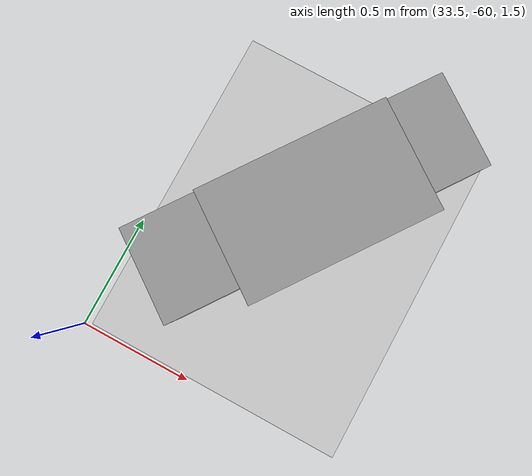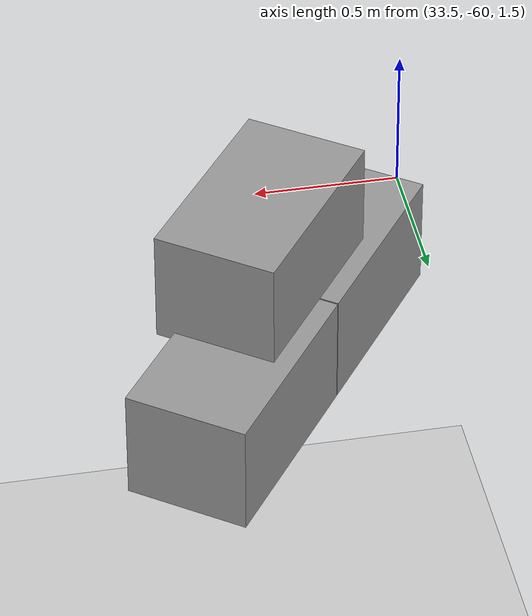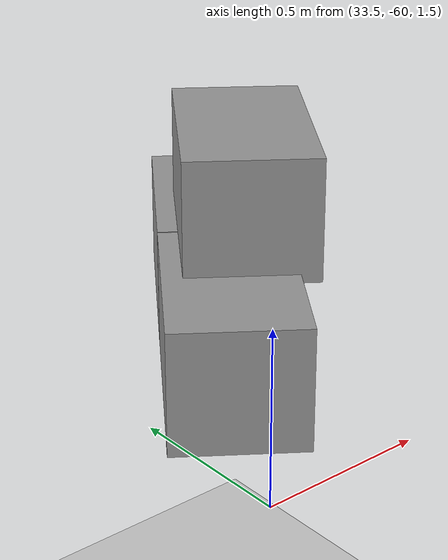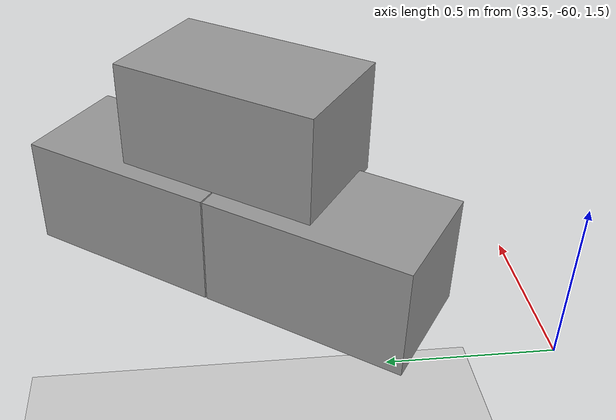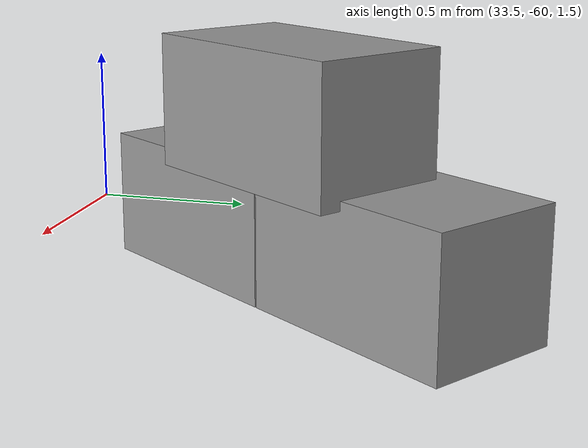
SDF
<sdf version="1.7">
 <world name="default">
  <model name="ground_plane">
   <static>1</static>
   <link name="link">
    <collision name="collision">
     <geometry><plane><normal>0 0 1</normal><size>100 100</size></plane></geometry>
     <surface>
      <contact><collide_bitmask>65535</collide_bitmask></contact>
      <friction><ode><mu>100</mu><mu2>50</mu2></ode></friction>
     </surface>
    </collision>
    <visual name="visual">
     <cast_shadows>0</cast_shadows>
     <geometry><plane><normal>0 0 1</normal><size>100 100</size></plane></geometry>
     <material>
      <script><uri>file://media/materials/scripts/gazebo.material</uri><name>Gazebo/Grey</name></script>
     </material>
    </visual>
   </link>
  </model>
  <model name="Add_Box_clone_clone_3_clone_18">
   <link name="link">
    <inertial>
     <mass>1</mass>
     <inertia>
      <ixx>0.166667</ixx>
      <ixy>0</ixy>
      <ixz>0</ixz>
      <iyy>0.166667</iyy>
      <iyz>0</iyz>
      <izz>0.166667</izz>
     </inertia>
    </inertial>
    <kinematic>1</kinematic>
    <gravity>0</gravity>
    <visual name="visual">
     <geometry><box><size>0.686 0.406 0.381</size></box></geometry>
     <material>
      <script><name>Gazebo/Grey</name><uri>file://media/materials/scripts/gazebo.material</uri></script>
      <shader type="pixel"><normal_map>__default__</normal_map></shader>
      <ambient>0.3 0.3 0.3 1</ambient>
      <diffuse>0.7 0.7 0.7 1</diffuse>
      <specular>0.01 0.01 0.01 1</specular>
      <emissive>0 0 0 1</emissive>
     </material>
    </visual>
    <collision name="collision">
     <geometry><box><size>1 1 1</size></box></geometry>
     <surface>
      <friction>
       <ode><mu>1</mu><mu2>1</mu2><fdir1>0 0 0</fdir1><slip1>0</slip1><slip2>0</slip2></ode>
       <torsional>
        <coefficient>1</coefficient>
        <patch_radius>0</patch_radius>
        <surface_radius>0</surface_radius>
        <use_patch_radius>1</use_patch_radius>
        <ode><slip>0</slip></ode>
       </torsional>
      </friction>
      <bounce><restitution_coefficient>0</restitution_coefficient><threshold>1e+06</threshold></bounce>
      <contact>
       <collide_without_contact>0</collide_without_contact>
       <collide_without_contact_bitmask>1</collide_without_contact_bitmask>
       <collide_bitmask>1</collide_bitmask>
       <ode>
        <soft_cfm>0</soft_cfm>
        <soft_erp>0.2</soft_erp>
        <kp>1e+13</kp>
        <kd>1</kd>
        <max_vel>0.01</max_vel>
        <min_depth>0</min_depth>
       </ode>
       <bullet>
        <split_impulse>1</split_impulse>
        <split_impulse_penetration_threshold>-0.01</split_impulse_penetration_threshold>
        <soft_cfm>0</soft_cfm>
        <soft_erp>0.2</soft_erp>
        <kp>1e+13</kp>
        <kd>1</kd>
       </bullet>
      </contact>
     </surface>
    </collision>
   </link>
   <link name="link_clone">
    <inertial>
     <mass>1</mass>
     <inertia>
      <ixx>0.166667</ixx>
      <ixy>0</ixy>
      <ixz>0</ixz>
      <iyy>0.166667</iyy>
      <iyz>0</iyz>
      <izz>0.166667</izz>
     </inertia>
    </inertial>
    <pose>-0.343354 -0.063316 0.354303 1e-05 -0 0</pose>
    <gravity>0</gravity>
    <visual name="visual">
     <geometry><box><size>0.686 0.406 0.381</size></box></geometry>
     <material>
      <script><name>Gazebo/Grey</name><uri>file://media/materials/scripts/gazebo.material</uri></script>
      <shader type="pixel"><normal_map>__default__</normal_map></shader>
      <ambient>0.3 0.3 0.3 1</ambient>
      <diffuse>0.7 0.7 0.7 1</diffuse>
      <specular>0.01 0.01 0.01 1</specular>
      <emissive>0 0 0 1</emissive>
     </material>
    </visual>
    <collision name="collision">
     <geometry><box><size>1 1 1</size></box></geometry>
     <surface>
      <friction>
       <ode><mu>1</mu><mu2>1</mu2><fdir1>0 0 0</fdir1><slip1>0</slip1><slip2>0</slip2></ode>
       <torsional>
        <coefficient>1</coefficient>
        <patch_radius>0</patch_radius>
        <surface_radius>0</surface_radius>
        <use_patch_radius>1</use_patch_radius>
        <ode><slip>0</slip></ode>
       </torsional>
      </friction>
      <bounce><restitution_coefficient>0</restitution_coefficient><threshold>1e+06</threshold></bounce>
      <contact>
       <collide_without_contact>0</collide_without_contact>
       <collide_without_contact_bitmask>1</collide_without_contact_bitmask>
       <collide_bitmask>1</collide_bitmask>
       <ode>
        <soft_cfm>0</soft_cfm>
        <soft_erp>0.2</soft_erp>
        <kp>1e+13</kp>
        <kd>1</kd>
        <max_vel>0.01</max_vel>
        <min_depth>0</min_depth>
       </ode>
       <bullet>
        <split_impulse>1</split_impulse>
        <split_impulse_penetration_threshold>-0.01</split_impulse_penetration_threshold>
        <soft_cfm>0</soft_cfm>
        <soft_erp>0.2</soft_erp>
        <kp>1e+13</kp>
        <kd>1</kd>
       </bullet>
      </contact>
     </surface>
    </collision>
   </link>
   <link name="link_clone_clone">
    <inertial>
     <mass>1</mass>
     <inertia>
      <ixx>0.166667</ixx>
      <ixy>0</ixy>
      <ixz>0</ixz>
      <iyy>0.166667</iyy>
      <iyz>0</iyz>
      <izz>0.166667</izz>
     </inertia>
    </inertial>
    <pose>-0.690786 -0.000183 -1e-05 2e-05 -0 0</pose>
    <gravity>0</gravity>
    <visual name="visual">
     <geometry><box><size>0.686 0.406 0.381</size></box></geometry>
     <material>
      <script><name>Gazebo/Grey</name><uri>file://media/materials/scripts/gazebo.material</uri></script>
      <shader type="pixel"><normal_map>__default__</normal_map></shader>
      <ambient>0.3 0.3 0.3 1</ambient>
      <diffuse>0.7 0.7 0.7 1</diffuse>
      <specular>0.01 0.01 0.01 1</specular>
      <emissive>0 0 0 1</emissive>
     </material>
    </visual>
    <collision name="collision">
     <geometry><box><size>1 1 1</size></box></geometry>
     <surface>
      <friction>
       <ode><mu>1</mu><mu2>1</mu2><fdir1>0 0 0</fdir1><slip1>0</slip1><slip2>0</slip2></ode>
       <torsional>
        <coefficient>1</coefficient>
        <patch_radius>0</patch_radius>
        <surface_radius>0</surface_radius>
        <use_patch_radius>1</use_patch_radius>
        <ode><slip>0</slip></ode>
       </torsional>
      </friction>
      <bounce><restitution_coefficient>0</restitution_coefficient><threshold>1e+06</threshold></bounce>
      <contact>
       <collide_without_contact>0</collide_without_contact>
       <collide_without_contact_bitmask>1</collide_without_contact_bitmask>
       <collide_bitmask>1</collide_bitmask>
       <ode>
        <soft_cfm>0</soft_cfm>
        <soft_erp>0.2</soft_erp>
        <kp>1e+13</kp>
        <kd>1</kd>
        <max_vel>0.01</max_vel>
        <min_depth>0</min_depth>
       </ode>
       <bullet>
        <split_impulse>1</split_impulse>
        <split_impulse_penetration_threshold>-0.01</split_impulse_penetration_threshold>
        <soft_cfm>0</soft_cfm>
        <soft_erp>0.2</soft_erp>
        <kp>1e+13</kp>
        <kd>1</kd>
       </bullet>
      </contact>
     </surface>
    </collision>
   </link>
   <static>0</static>
   <pose>34.2804 -58.8314 1.61518 0 -0 0.950497</pose>
  </model>
 </world>
</sdf>
